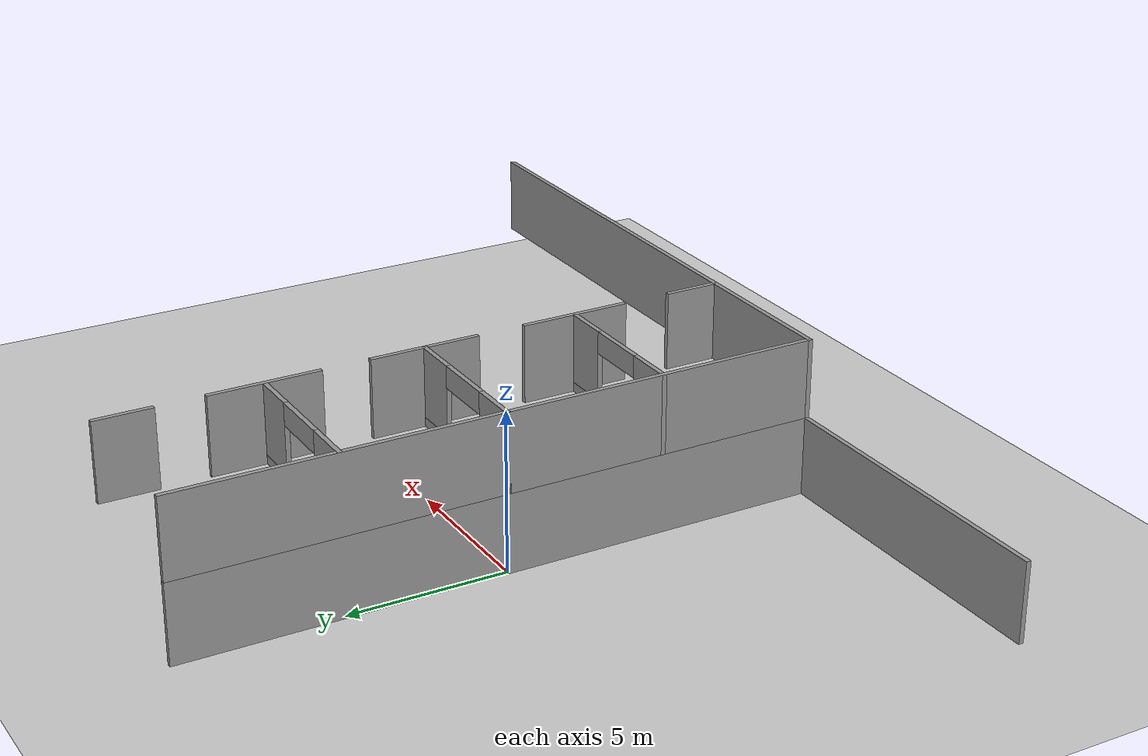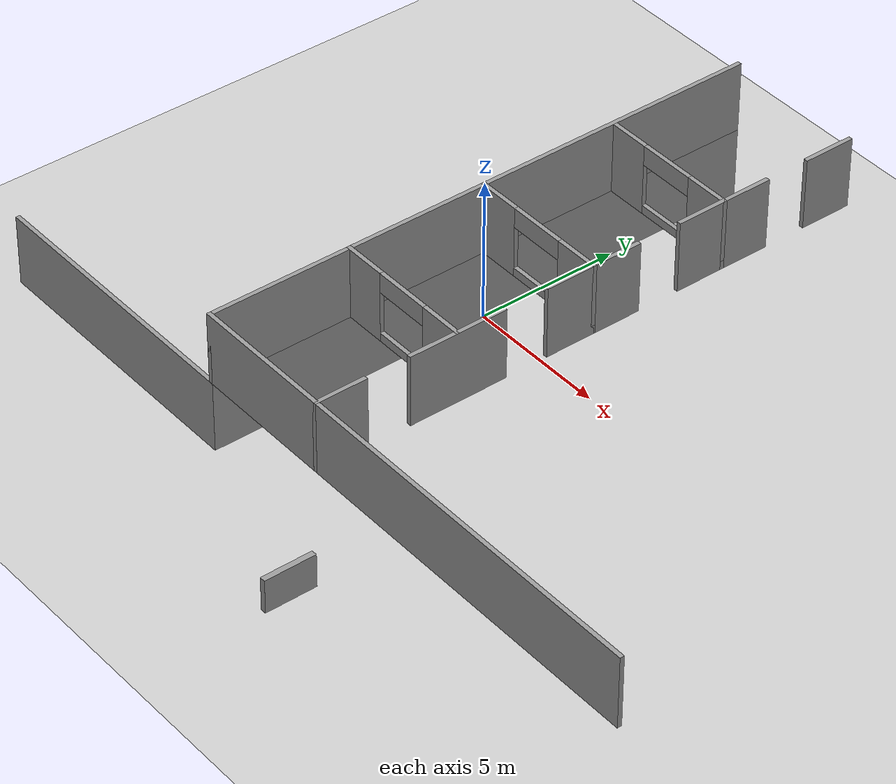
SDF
<sdf version="1.7">
 <world name="default">
  <model name="ground_plane">
   <static>1</static>
   <link name="link">
    <collision name="collision">
     <geometry><plane><normal>0 0 1</normal><size>100 100</size></plane></geometry>
     <surface>
      <contact><collide_bitmask>65535</collide_bitmask></contact>
      <friction><ode><mu>100</mu><mu2>50</mu2></ode></friction>
     </surface>
    </collision>
    <visual name="visual">
     <cast_shadows>0</cast_shadows>
     <geometry><plane><normal>0 0 1</normal><size>100 100</size></plane></geometry>
     <material>
      <script><uri>file://media/materials/scripts/gazebo.material</uri><name>Gazebo/Grey</name></script>
     </material>
    </visual>
   </link>
  </model>
  <model name="smart_house_3_0">
   <link name="Wall_14">
    <pose>2.48447 1.48447 0 0 -0 1.5708</pose>
    <inertial>
     <inertia><ixx>1</ixx><ixy>0</ixy><ixz>0</ixz><iyy>1</iyy><iyz>0</iyz><izz>1</izz></inertia>
     <mass>1</mass>
    </inertial>
    <visual name="Wall_14_Visual">
     <pose>0 0 1.25 0 -0 0</pose>
     <geometry><box><size>20.15 0.15 2.5</size></box></geometry>
     <material>
      <script><uri>file://media/materials/scripts/gazebo.material</uri><name>Gazebo/Grey</name></script>
      <ambient>1 1 1 1</ambient>
      <shader type="pixel"/>
     </material>
     <meta><layer>0</layer></meta>
    </visual>
    <collision name="Wall_14_Collision">
     <pose>0 0 1.25 0 -0 0</pose>
     <geometry><box><size>20.15 0.15 2.5</size></box></geometry>
     <surface>
      <friction>
       <ode><mu>1</mu><mu2>1</mu2><fdir1>0 0 0</fdir1><slip1>0</slip1><slip2>0</slip2></ode>
       <torsional>
        <coefficient>1</coefficient>
        <patch_radius>0</patch_radius>
        <surface_radius>0</surface_radius>
        <use_patch_radius>1</use_patch_radius>
        <ode><slip>0</slip></ode>
       </torsional>
      </friction>
      <bounce><restitution_coefficient>0</restitution_coefficient><threshold>1e+06</threshold></bounce>
      <contact>
       <collide_without_contact>0</collide_without_contact>
       <collide_without_contact_bitmask>1</collide_without_contact_bitmask>
       <collide_bitmask>1</collide_bitmask>
       <ode>
        <soft_cfm>0</soft_cfm>
        <soft_erp>0.2</soft_erp>
        <kp>1e+13</kp>
        <kd>1</kd>
        <max_vel>0.01</max_vel>
        <min_depth>0</min_depth>
       </ode>
       <bullet>
        <split_impulse>1</split_impulse>
        <split_impulse_penetration_threshold>-0.01</split_impulse_penetration_threshold>
        <soft_cfm>0</soft_cfm>
        <soft_erp>0.2</soft_erp>
        <kp>1e+13</kp>
        <kd>1</kd>
       </bullet>
      </contact>
     </surface>
    </collision>
   </link>
   <link name="Wall_234">
    <pose>2.48447 1.48447 2.5 0 -0 1.5708</pose>
    <inertial>
     <inertia><ixx>1</ixx><ixy>0</ixy><ixz>0</ixz><iyy>1</iyy><iyz>0</iyz><izz>1</izz></inertia>
     <mass>1</mass>
    </inertial>
    <visual name="Wall_234_Visual">
     <pose>0 0 1.25 0 -0 0</pose>
     <geometry><box><size>20.15 0.15 2.5</size></box></geometry>
     <material>
      <script><uri>file://media/materials/scripts/gazebo.material</uri><name>Gazebo/Grey</name></script>
      <ambient>1 1 1 1</ambient>
      <shader type="pixel"/>
     </material>
     <meta><layer>2</layer></meta>
    </visual>
    <collision name="Wall_234_Collision">
     <pose>0 0 1.25 0 -0 0</pose>
     <geometry><box><size>20.15 0.15 2.5</size></box></geometry>
     <surface>
      <friction>
       <ode><mu>1</mu><mu2>1</mu2><fdir1>0 0 0</fdir1><slip1>0</slip1><slip2>0</slip2></ode>
       <torsional>
        <coefficient>1</coefficient>
        <patch_radius>0</patch_radius>
        <surface_radius>0</surface_radius>
        <use_patch_radius>1</use_patch_radius>
        <ode><slip>0</slip></ode>
       </torsional>
      </friction>
      <bounce><restitution_coefficient>0</restitution_coefficient><threshold>1e+06</threshold></bounce>
      <contact>
       <collide_without_contact>0</collide_without_contact>
       <collide_without_contact_bitmask>1</collide_without_contact_bitmask>
       <collide_bitmask>1</collide_bitmask>
       <ode>
        <soft_cfm>0</soft_cfm>
        <soft_erp>0.2</soft_erp>
        <kp>1e+13</kp>
        <kd>1</kd>
        <max_vel>0.01</max_vel>
        <min_depth>0</min_depth>
       </ode>
       <bullet>
        <split_impulse>1</split_impulse>
        <split_impulse_penetration_threshold>-0.01</split_impulse_penetration_threshold>
        <soft_cfm>0</soft_cfm>
        <soft_erp>0.2</soft_erp>
        <kp>1e+13</kp>
        <kd>1</kd>
       </bullet>
      </contact>
     </surface>
    </collision>
   </link>
   <link name="Wall_258">
    <pose>11.4845 -8.51553 2.5 0 -0 0</pose>
    <inertial>
     <inertia><ixx>1</ixx><ixy>0</ixy><ixz>0</ixz><iyy>1</iyy><iyz>0</iyz><izz>1</izz></inertia>
     <mass>1</mass>
    </inertial>
    <visual name="Wall_258_Visual">
     <pose>0 0 1.25 0 -0 0</pose>
     <geometry><box><size>18.15 0.15 2.5</size></box></geometry>
     <material>
      <script><uri>file://media/materials/scripts/gazebo.material</uri><name>Gazebo/Grey</name></script>
      <ambient>1 1 1 1</ambient>
      <shader type="pixel"/>
     </material>
     <meta><layer>2</layer></meta>
    </visual>
    <collision name="Wall_258_Collision">
     <pose>0 0 1.25 0 -0 0</pose>
     <geometry><box><size>18.15 0.15 2.5</size></box></geometry>
     <surface>
      <friction>
       <ode><mu>1</mu><mu2>1</mu2><fdir1>0 0 0</fdir1><slip1>0</slip1><slip2>0</slip2></ode>
       <torsional>
        <coefficient>1</coefficient>
        <patch_radius>0</patch_radius>
        <surface_radius>0</surface_radius>
        <use_patch_radius>1</use_patch_radius>
        <ode><slip>0</slip></ode>
       </torsional>
      </friction>
      <bounce><restitution_coefficient>0</restitution_coefficient><threshold>1e+06</threshold></bounce>
      <contact>
       <collide_without_contact>0</collide_without_contact>
       <collide_without_contact_bitmask>1</collide_without_contact_bitmask>
       <collide_bitmask>1</collide_bitmask>
       <ode>
        <soft_cfm>0</soft_cfm>
        <soft_erp>0.2</soft_erp>
        <kp>1e+13</kp>
        <kd>1</kd>
        <max_vel>0.01</max_vel>
        <min_depth>0</min_depth>
       </ode>
       <bullet>
        <split_impulse>1</split_impulse>
        <split_impulse_penetration_threshold>-0.01</split_impulse_penetration_threshold>
        <soft_cfm>0</soft_cfm>
        <soft_erp>0.2</soft_erp>
        <kp>1e+13</kp>
        <kd>1</kd>
       </bullet>
      </contact>
     </surface>
    </collision>
   </link>
   <link name="Wall_288">
    <pose>4.98447 6.48447 2.5 0 -0 0</pose>
    <inertial>
     <inertia><ixx>1</ixx><ixy>0</ixy><ixz>0</ixz><iyy>1</iyy><iyz>0</iyz><izz>1</izz></inertia>
     <mass>1</mass>
    </inertial>
    <visual name="Wall_288_Visual_3">
     <pose>0 0 2.15 0 -0 0</pose>
     <geometry><box><size>2 0.15 0.7</size></box></geometry>
     <material>
      <script><uri>file://media/materials/scripts/gazebo.material</uri><name>Gazebo/Grey</name></script>
      <ambient>1 1 1 1</ambient>
      <shader type="pixel"/>
     </material>
     <meta><layer>2</layer></meta>
    </visual>
    <visual name="Wall_288_Visual_0">
     <pose>-1.7875 0 1.25 0 -0 0</pose>
     <geometry><box><size>1.575 0.15 2.5</size></box></geometry>
     <material>
      <script><uri>file://media/materials/scripts/gazebo.material</uri><name>Gazebo/Grey</name></script>
      <ambient>1 1 1 1</ambient>
      <shader type="pixel"/>
     </material>
     <meta><layer>2</layer></meta>
    </visual>
    <visual name="Wall_288_Visual_1">
     <pose>0.7875 0 0.15 0 -0 0</pose>
     <geometry><box><size>3.575 0.15 0.3</size></box></geometry>
     <material>
      <script><uri>file://media/materials/scripts/gazebo.material</uri><name>Gazebo/Grey</name></script>
      <ambient>1 1 1 1</ambient>
      <shader type="pixel"/>
     </material>
     <meta><layer>2</layer></meta>
    </visual>
    <visual name="Wall_288_Visual_2">
     <pose>1.7875 0 1.4 0 -0 0</pose>
     <geometry><box><size>1.575 0.15 2.2</size></box></geometry>
     <material>
      <script><uri>file://media/materials/scripts/gazebo.material</uri><name>Gazebo/Grey</name></script>
      <ambient>1 1 1 1</ambient>
      <shader type="pixel"/>
     </material>
     <meta><layer>2</layer></meta>
    </visual>
    <collision name="Wall_288_Collision_1">
     <pose>0.7875 0 0.15 0 -0 0</pose>
     <geometry><box><size>3.575 0.15 0.3</size></box></geometry>
     <surface>
      <friction>
       <ode><mu>1</mu><mu2>1</mu2><fdir1>0 0 0</fdir1><slip1>0</slip1><slip2>0</slip2></ode>
       <torsional>
        <coefficient>1</coefficient>
        <patch_radius>0</patch_radius>
        <surface_radius>0</surface_radius>
        <use_patch_radius>1</use_patch_radius>
        <ode><slip>0</slip></ode>
       </torsional>
      </friction>
      <bounce><restitution_coefficient>0</restitution_coefficient><threshold>1e+06</threshold></bounce>
      <contact>
       <collide_without_contact>0</collide_without_contact>
       <collide_without_contact_bitmask>1</collide_without_contact_bitmask>
       <collide_bitmask>1</collide_bitmask>
       <ode>
        <soft_cfm>0</soft_cfm>
        <soft_erp>0.2</soft_erp>
        <kp>1e+13</kp>
        <kd>1</kd>
        <max_vel>0.01</max_vel>
        <min_depth>0</min_depth>
       </ode>
       <bullet>
        <split_impulse>1</split_impulse>
        <split_impulse_penetration_threshold>-0.01</split_impulse_penetration_threshold>
        <soft_cfm>0</soft_cfm>
        <soft_erp>0.2</soft_erp>
        <kp>1e+13</kp>
        <kd>1</kd>
       </bullet>
      </contact>
     </surface>
    </collision>
    <collision name="Wall_288_Collision_3">
     <pose>0 0 2.15 0 -0 0</pose>
     <geometry><box><size>2 0.15 0.7</size></box></geometry>
     <surface>
      <friction>
       <ode><mu>1</mu><mu2>1</mu2><fdir1>0 0 0</fdir1><slip1>0</slip1><slip2>0</slip2></ode>
       <torsional>
        <coefficient>1</coefficient>
        <patch_radius>0</patch_radius>
        <surface_radius>0</surface_radius>
        <use_patch_radius>1</use_patch_radius>
        <ode><slip>0</slip></ode>
       </torsional>
      </friction>
      <bounce><restitution_coefficient>0</restitution_coefficient><threshold>1e+06</threshold></bounce>
      <contact>
       <collide_without_contact>0</collide_without_contact>
       <collide_without_contact_bitmask>1</collide_without_contact_bitmask>
       <collide_bitmask>1</collide_bitmask>
       <ode>
        <soft_cfm>0</soft_cfm>
        <soft_erp>0.2</soft_erp>
        <kp>1e+13</kp>
        <kd>1</kd>
        <max_vel>0.01</max_vel>
        <min_depth>0</min_depth>
       </ode>
       <bullet>
        <split_impulse>1</split_impulse>
        <split_impulse_penetration_threshold>-0.01</split_impulse_penetration_threshold>
        <soft_cfm>0</soft_cfm>
        <soft_erp>0.2</soft_erp>
        <kp>1e+13</kp>
        <kd>1</kd>
       </bullet>
      </contact>
     </surface>
    </collision>
    <collision name="Wall_288_Collision_0">
     <pose>-1.7875 0 1.25 0 -0 0</pose>
     <geometry><box><size>1.575 0.15 2.5</size></box></geometry>
     <surface>
      <friction>
       <ode><mu>1</mu><mu2>1</mu2><fdir1>0 0 0</fdir1><slip1>0</slip1><slip2>0</slip2></ode>
       <torsional>
        <coefficient>1</coefficient>
        <patch_radius>0</patch_radius>
        <surface_radius>0</surface_radius>
        <use_patch_radius>1</use_patch_radius>
        <ode><slip>0</slip></ode>
       </torsional>
      </friction>
      <bounce><restitution_coefficient>0</restitution_coefficient><threshold>1e+06</threshold></bounce>
      <contact>
       <collide_without_contact>0</collide_without_contact>
       <collide_without_contact_bitmask>1</collide_without_contact_bitmask>
       <collide_bitmask>1</collide_bitmask>
       <ode>
        <soft_cfm>0</soft_cfm>
        <soft_erp>0.2</soft_erp>
        <kp>1e+13</kp>
        <kd>1</kd>
        <max_vel>0.01</max_vel>
        <min_depth>0</min_depth>
       </ode>
       <bullet>
        <split_impulse>1</split_impulse>
        <split_impulse_penetration_threshold>-0.01</split_impulse_penetration_threshold>
        <soft_cfm>0</soft_cfm>
        <soft_erp>0.2</soft_erp>
        <kp>1e+13</kp>
        <kd>1</kd>
       </bullet>
      </contact>
     </surface>
    </collision>
    <collision name="Wall_288_Collision_2">
     <pose>1.7875 0 1.4 0 -0 0</pose>
     <geometry><box><size>1.575 0.15 2.2</size></box></geometry>
     <surface>
      <friction>
       <ode><mu>1</mu><mu2>1</mu2><fdir1>0 0 0</fdir1><slip1>0</slip1><slip2>0</slip2></ode>
       <torsional>
        <coefficient>1</coefficient>
        <patch_radius>0</patch_radius>
        <surface_radius>0</surface_radius>
        <use_patch_radius>1</use_patch_radius>
        <ode><slip>0</slip></ode>
       </torsional>
      </friction>
      <bounce><restitution_coefficient>0</restitution_coefficient><threshold>1e+06</threshold></bounce>
      <contact>
       <collide_without_contact>0</collide_without_contact>
       <collide_without_contact_bitmask>1</collide_without_contact_bitmask>
       <collide_bitmask>1</collide_bitmask>
       <ode>
        <soft_cfm>0</soft_cfm>
        <soft_erp>0.2</soft_erp>
        <kp>1e+13</kp>
        <kd>1</kd>
        <max_vel>0.01</max_vel>
        <min_depth>0</min_depth>
       </ode>
       <bullet>
        <split_impulse>1</split_impulse>
        <split_impulse_penetration_threshold>-0.01</split_impulse_penetration_threshold>
        <soft_cfm>0</soft_cfm>
        <soft_erp>0.2</soft_erp>
        <kp>1e+13</kp>
        <kd>1</kd>
       </bullet>
      </contact>
     </surface>
    </collision>
   </link>
   <link name="Wall_290">
    <pose>4.98447 1.48447 2.5 0 -0 0</pose>
    <inertial>
     <inertia><ixx>1</ixx><ixy>0</ixy><ixz>0</ixz><iyy>1</iyy><iyz>0</iyz><izz>1</izz></inertia>
     <mass>1</mass>
    </inertial>
    <visual name="Wall_290_Visual_1">
     <pose>0.7875 0 0.15 0 -0 0</pose>
     <geometry><box><size>3.575 0.15 0.3</size></box></geometry>
     <material>
      <script><uri>file://media/materials/scripts/gazebo.material</uri><name>Gazebo/Grey</name></script>
      <ambient>1 1 1 1</ambient>
      <shader type="pixel"/>
     </material>
     <meta><layer>2</layer></meta>
    </visual>
    <visual name="Wall_290_Visual_0">
     <pose>-1.7875 0 1.25 0 -0 0</pose>
     <geometry><box><size>1.575 0.15 2.5</size></box></geometry>
     <material>
      <script><uri>file://media/materials/scripts/gazebo.material</uri><name>Gazebo/Grey</name></script>
      <ambient>1 1 1 1</ambient>
      <shader type="pixel"/>
     </material>
     <meta><layer>2</layer></meta>
    </visual>
    <visual name="Wall_290_Visual_2">
     <pose>1.7875 0 1.4 0 -0 0</pose>
     <geometry><box><size>1.575 0.15 2.2</size></box></geometry>
     <material>
      <script><uri>file://media/materials/scripts/gazebo.material</uri><name>Gazebo/Grey</name></script>
      <ambient>1 1 1 1</ambient>
      <shader type="pixel"/>
     </material>
     <meta><layer>2</layer></meta>
    </visual>
    <visual name="Wall_290_Visual_3">
     <pose>0 0 2.15 0 -0 0</pose>
     <geometry><box><size>2 0.15 0.7</size></box></geometry>
     <material>
      <script><uri>file://media/materials/scripts/gazebo.material</uri><name>Gazebo/Grey</name></script>
      <ambient>1 1 1 1</ambient>
      <shader type="pixel"/>
     </material>
     <meta><layer>2</layer></meta>
    </visual>
    <collision name="Wall_290_Collision_3">
     <pose>0 0 2.15 0 -0 0</pose>
     <geometry><box><size>2 0.15 0.7</size></box></geometry>
     <surface>
      <friction>
       <ode><mu>1</mu><mu2>1</mu2><fdir1>0 0 0</fdir1><slip1>0</slip1><slip2>0</slip2></ode>
       <torsional>
        <coefficient>1</coefficient>
        <patch_radius>0</patch_radius>
        <surface_radius>0</surface_radius>
        <use_patch_radius>1</use_patch_radius>
        <ode><slip>0</slip></ode>
       </torsional>
      </friction>
      <bounce><restitution_coefficient>0</restitution_coefficient><threshold>1e+06</threshold></bounce>
      <contact>
       <collide_without_contact>0</collide_without_contact>
       <collide_without_contact_bitmask>1</collide_without_contact_bitmask>
       <collide_bitmask>1</collide_bitmask>
       <ode>
        <soft_cfm>0</soft_cfm>
        <soft_erp>0.2</soft_erp>
        <kp>1e+13</kp>
        <kd>1</kd>
        <max_vel>0.01</max_vel>
        <min_depth>0</min_depth>
       </ode>
       <bullet>
        <split_impulse>1</split_impulse>
        <split_impulse_penetration_threshold>-0.01</split_impulse_penetration_threshold>
        <soft_cfm>0</soft_cfm>
        <soft_erp>0.2</soft_erp>
        <kp>1e+13</kp>
        <kd>1</kd>
       </bullet>
      </contact>
     </surface>
    </collision>
    <collision name="Wall_290_Collision_1">
     <pose>0.7875 0 0.15 0 -0 0</pose>
     <geometry><box><size>3.575 0.15 0.3</size></box></geometry>
     <surface>
      <friction>
       <ode><mu>1</mu><mu2>1</mu2><fdir1>0 0 0</fdir1><slip1>0</slip1><slip2>0</slip2></ode>
       <torsional>
        <coefficient>1</coefficient>
        <patch_radius>0</patch_radius>
        <surface_radius>0</surface_radius>
        <use_patch_radius>1</use_patch_radius>
        <ode><slip>0</slip></ode>
       </torsional>
      </friction>
      <bounce><restitution_coefficient>0</restitution_coefficient><threshold>1e+06</threshold></bounce>
      <contact>
       <collide_without_contact>0</collide_without_contact>
       <collide_without_contact_bitmask>1</collide_without_contact_bitmask>
       <collide_bitmask>1</collide_bitmask>
       <ode>
        <soft_cfm>0</soft_cfm>
        <soft_erp>0.2</soft_erp>
        <kp>1e+13</kp>
        <kd>1</kd>
        <max_vel>0.01</max_vel>
        <min_depth>0</min_depth>
       </ode>
       <bullet>
        <split_impulse>1</split_impulse>
        <split_impulse_penetration_threshold>-0.01</split_impulse_penetration_threshold>
        <soft_cfm>0</soft_cfm>
        <soft_erp>0.2</soft_erp>
        <kp>1e+13</kp>
        <kd>1</kd>
       </bullet>
      </contact>
     </surface>
    </collision>
    <collision name="Wall_290_Collision_2">
     <pose>1.7875 0 1.4 0 -0 0</pose>
     <geometry><box><size>1.575 0.15 2.2</size></box></geometry>
     <surface>
      <friction>
       <ode><mu>1</mu><mu2>1</mu2><fdir1>0 0 0</fdir1><slip1>0</slip1><slip2>0</slip2></ode>
       <torsional>
        <coefficient>1</coefficient>
        <patch_radius>0</patch_radius>
        <surface_radius>0</surface_radius>
        <use_patch_radius>1</use_patch_radius>
        <ode><slip>0</slip></ode>
       </torsional>
      </friction>
      <bounce><restitution_coefficient>0</restitution_coefficient><threshold>1e+06</threshold></bounce>
      <contact>
       <collide_without_contact>0</collide_without_contact>
       <collide_without_contact_bitmask>1</collide_without_contact_bitmask>
       <collide_bitmask>1</collide_bitmask>
       <ode>
        <soft_cfm>0</soft_cfm>
        <soft_erp>0.2</soft_erp>
        <kp>1e+13</kp>
        <kd>1</kd>
        <max_vel>0.01</max_vel>
        <min_depth>0</min_depth>
       </ode>
       <bullet>
        <split_impulse>1</split_impulse>
        <split_impulse_penetration_threshold>-0.01</split_impulse_penetration_threshold>
        <soft_cfm>0</soft_cfm>
        <soft_erp>0.2</soft_erp>
        <kp>1e+13</kp>
        <kd>1</kd>
       </bullet>
      </contact>
     </surface>
    </collision>
    <collision name="Wall_290_Collision_0">
     <pose>-1.7875 0 1.25 0 -0 0</pose>
     <geometry><box><size>1.575 0.15 2.5</size></box></geometry>
     <surface>
      <friction>
       <ode><mu>1</mu><mu2>1</mu2><fdir1>0 0 0</fdir1><slip1>0</slip1><slip2>0</slip2></ode>
       <torsional>
        <coefficient>1</coefficient>
        <patch_radius>0</patch_radius>
        <surface_radius>0</surface_radius>
        <use_patch_radius>1</use_patch_radius>
        <ode><slip>0</slip></ode>
       </torsional>
      </friction>
      <bounce><restitution_coefficient>0</restitution_coefficient><threshold>1e+06</threshold></bounce>
      <contact>
       <collide_without_contact>0</collide_without_contact>
       <collide_without_contact_bitmask>1</collide_without_contact_bitmask>
       <collide_bitmask>1</collide_bitmask>
       <ode>
        <soft_cfm>0</soft_cfm>
        <soft_erp>0.2</soft_erp>
        <kp>1e+13</kp>
        <kd>1</kd>
        <max_vel>0.01</max_vel>
        <min_depth>0</min_depth>
       </ode>
       <bullet>
        <split_impulse>1</split_impulse>
        <split_impulse_penetration_threshold>-0.01</split_impulse_penetration_threshold>
        <soft_cfm>0</soft_cfm>
        <soft_erp>0.2</soft_erp>
        <kp>1e+13</kp>
        <kd>1</kd>
       </bullet>
      </contact>
     </surface>
    </collision>
   </link>
   <link name="Wall_292">
    <pose>4.98447 -3.51553 2.5 0 -0 0</pose>
    <inertial>
     <inertia><ixx>1</ixx><ixy>0</ixy><ixz>0</ixz><iyy>1</iyy><iyz>0</iyz><izz>1</izz></inertia>
     <mass>1</mass>
    </inertial>
    <visual name="Wall_292_Visual_0">
     <pose>-1.7875 0 1.25 0 -0 0</pose>
     <geometry><box><size>1.575 0.15 2.5</size></box></geometry>
     <material>
      <script><uri>file://media/materials/scripts/gazebo.material</uri><name>Gazebo/Grey</name></script>
      <ambient>1 1 1 1</ambient>
      <shader type="pixel"/>
     </material>
     <meta><layer>2</layer></meta>
    </visual>
    <visual name="Wall_292_Visual_2">
     <pose>1.7875 0 1.4 0 -0 0</pose>
     <geometry><box><size>1.575 0.15 2.2</size></box></geometry>
     <material>
      <script><uri>file://media/materials/scripts/gazebo.material</uri><name>Gazebo/Grey</name></script>
      <ambient>1 1 1 1</ambient>
      <shader type="pixel"/>
     </material>
     <meta><layer>2</layer></meta>
    </visual>
    <visual name="Wall_292_Visual_3">
     <pose>0 0 2.15 0 -0 0</pose>
     <geometry><box><size>2 0.15 0.7</size></box></geometry>
     <material>
      <script><uri>file://media/materials/scripts/gazebo.material</uri><name>Gazebo/Grey</name></script>
      <ambient>1 1 1 1</ambient>
      <shader type="pixel"/>
     </material>
     <meta><layer>2</layer></meta>
    </visual>
    <visual name="Wall_292_Visual_1">
     <pose>0.7875 0 0.15 0 -0 0</pose>
     <geometry><box><size>3.575 0.15 0.3</size></box></geometry>
     <material>
      <script><uri>file://media/materials/scripts/gazebo.material</uri><name>Gazebo/Grey</name></script>
      <ambient>1 1 1 1</ambient>
      <shader type="pixel"/>
     </material>
     <meta><layer>2</layer></meta>
    </visual>
    <collision name="Wall_292_Collision_0">
     <pose>-1.7875 0 1.25 0 -0 0</pose>
     <geometry><box><size>1.575 0.15 2.5</size></box></geometry>
     <surface>
      <friction>
       <ode><mu>1</mu><mu2>1</mu2><fdir1>0 0 0</fdir1><slip1>0</slip1><slip2>0</slip2></ode>
       <torsional>
        <coefficient>1</coefficient>
        <patch_radius>0</patch_radius>
        <surface_radius>0</surface_radius>
        <use_patch_radius>1</use_patch_radius>
        <ode><slip>0</slip></ode>
       </torsional>
      </friction>
      <bounce><restitution_coefficient>0</restitution_coefficient><threshold>1e+06</threshold></bounce>
      <contact>
       <collide_without_contact>0</collide_without_contact>
       <collide_without_contact_bitmask>1</collide_without_contact_bitmask>
       <collide_bitmask>1</collide_bitmask>
       <ode>
        <soft_cfm>0</soft_cfm>
        <soft_erp>0.2</soft_erp>
        <kp>1e+13</kp>
        <kd>1</kd>
        <max_vel>0.01</max_vel>
        <min_depth>0</min_depth>
       </ode>
       <bullet>
        <split_impulse>1</split_impulse>
        <split_impulse_penetration_threshold>-0.01</split_impulse_penetration_threshold>
        <soft_cfm>0</soft_cfm>
        <soft_erp>0.2</soft_erp>
        <kp>1e+13</kp>
        <kd>1</kd>
       </bullet>
      </contact>
     </surface>
    </collision>
    <collision name="Wall_292_Collision_3">
     <pose>0 0 2.15 0 -0 0</pose>
     <geometry><box><size>2 0.15 0.7</size></box></geometry>
     <surface>
      <friction>
       <ode><mu>1</mu><mu2>1</mu2><fdir1>0 0 0</fdir1><slip1>0</slip1><slip2>0</slip2></ode>
       <torsional>
        <coefficient>1</coefficient>
        <patch_radius>0</patch_radius>
        <surface_radius>0</surface_radius>
        <use_patch_radius>1</use_patch_radius>
        <ode><slip>0</slip></ode>
       </torsional>
      </friction>
      <bounce><restitution_coefficient>0</restitution_coefficient><threshold>1e+06</threshold></bounce>
      <contact>
       <collide_without_contact>0</collide_without_contact>
       <collide_without_contact_bitmask>1</collide_without_contact_bitmask>
       <collide_bitmask>1</collide_bitmask>
       <ode>
        <soft_cfm>0</soft_cfm>
        <soft_erp>0.2</soft_erp>
        <kp>1e+13</kp>
        <kd>1</kd>
        <max_vel>0.01</max_vel>
        <min_depth>0</min_depth>
       </ode>
       <bullet>
        <split_impulse>1</split_impulse>
        <split_impulse_penetration_threshold>-0.01</split_impulse_penetration_threshold>
        <soft_cfm>0</soft_cfm>
        <soft_erp>0.2</soft_erp>
        <kp>1e+13</kp>
        <kd>1</kd>
       </bullet>
      </contact>
     </surface>
    </collision>
    <collision name="Wall_292_Collision_2">
     <pose>1.7875 0 1.4 0 -0 0</pose>
     <geometry><box><size>1.575 0.15 2.2</size></box></geometry>
     <surface>
      <friction>
       <ode><mu>1</mu><mu2>1</mu2><fdir1>0 0 0</fdir1><slip1>0</slip1><slip2>0</slip2></ode>
       <torsional>
        <coefficient>1</coefficient>
        <patch_radius>0</patch_radius>
        <surface_radius>0</surface_radius>
        <use_patch_radius>1</use_patch_radius>
        <ode><slip>0</slip></ode>
       </torsional>
      </friction>
      <bounce><restitution_coefficient>0</restitution_coefficient><threshold>1e+06</threshold></bounce>
      <contact>
       <collide_without_contact>0</collide_without_contact>
       <collide_without_contact_bitmask>1</collide_without_contact_bitmask>
       <collide_bitmask>1</collide_bitmask>
       <ode>
        <soft_cfm>0</soft_cfm>
        <soft_erp>0.2</soft_erp>
        <kp>1e+13</kp>
        <kd>1</kd>
        <max_vel>0.01</max_vel>
        <min_depth>0</min_depth>
       </ode>
       <bullet>
        <split_impulse>1</split_impulse>
        <split_impulse_penetration_threshold>-0.01</split_impulse_penetration_threshold>
        <soft_cfm>0</soft_cfm>
        <soft_erp>0.2</soft_erp>
        <kp>1e+13</kp>
        <kd>1</kd>
       </bullet>
      </contact>
     </surface>
    </collision>
    <collision name="Wall_292_Collision_1">
     <pose>0.7875 0 0.15 0 -0 0</pose>
     <geometry><box><size>3.575 0.15 0.3</size></box></geometry>
     <surface>
      <friction>
       <ode><mu>1</mu><mu2>1</mu2><fdir1>0 0 0</fdir1><slip1>0</slip1><slip2>0</slip2></ode>
       <torsional>
        <coefficient>1</coefficient>
        <patch_radius>0</patch_radius>
        <surface_radius>0</surface_radius>
        <use_patch_radius>1</use_patch_radius>
        <ode><slip>0</slip></ode>
       </torsional>
      </friction>
      <bounce><restitution_coefficient>0</restitution_coefficient><threshold>1e+06</threshold></bounce>
      <contact>
       <collide_without_contact>0</collide_without_contact>
       <collide_without_contact_bitmask>1</collide_without_contact_bitmask>
       <collide_bitmask>1</collide_bitmask>
       <ode>
        <soft_cfm>0</soft_cfm>
        <soft_erp>0.2</soft_erp>
        <kp>1e+13</kp>
        <kd>1</kd>
        <max_vel>0.01</max_vel>
        <min_depth>0</min_depth>
       </ode>
       <bullet>
        <split_impulse>1</split_impulse>
        <split_impulse_penetration_threshold>-0.01</split_impulse_penetration_threshold>
        <soft_cfm>0</soft_cfm>
        <soft_erp>0.2</soft_erp>
        <kp>1e+13</kp>
        <kd>1</kd>
       </bullet>
      </contact>
     </surface>
    </collision>
   </link>
   <link name="Wall_294">
    <pose>7.48447 1.48447 2.5 0 -0 1.5708</pose>
    <inertial>
     <inertia><ixx>1</ixx><ixy>0</ixy><ixz>0</ixz><iyy>1</iyy><iyz>0</iyz><izz>1</izz></inertia>
     <mass>1</mass>
    </inertial>
    <visual name="Wall_294_Visual_2">
     <pose>0 0 1.25 0 -0 0</pose>
     <geometry><box><size>3.5 0.15 2.5</size></box></geometry>
     <material>
      <script><uri>file://media/materials/scripts/gazebo.material</uri><name>Gazebo/Grey</name></script>
      <ambient>1 1 1 1</ambient>
      <shader type="pixel"/>
     </material>
     <meta><layer>2</layer></meta>
    </visual>
    <visual name="Wall_294_Visual_4">
     <pose>9.1625 0 1.25 0 -0 0</pose>
     <geometry><box><size>1.825 0.15 2.5</size></box></geometry>
     <material>
      <script><uri>file://media/materials/scripts/gazebo.material</uri><name>Gazebo/Grey</name></script>
      <ambient>1 1 1 1</ambient>
      <shader type="pixel"/>
     </material>
     <meta><layer>2</layer></meta>
    </visual>
    <visual name="Wall_294_Visual_1">
     <pose>-5 0 1.25 0 -0 0</pose>
     <geometry><box><size>3.5 0.15 2.5</size></box></geometry>
     <material>
      <script><uri>file://media/materials/scripts/gazebo.material</uri><name>Gazebo/Grey</name></script>
      <ambient>1 1 1 1</ambient>
      <shader type="pixel"/>
     </material>
     <meta><layer>2</layer></meta>
    </visual>
    <visual name="Wall_294_Visual_0">
     <pose>-9.1625 0 1.25 0 -0 0</pose>
     <geometry><box><size>1.825 0.15 2.5</size></box></geometry>
     <material>
      <script><uri>file://media/materials/scripts/gazebo.material</uri><name>Gazebo/Grey</name></script>
      <ambient>1 1 1 1</ambient>
      <shader type="pixel"/>
     </material>
     <meta><layer>2</layer></meta>
    </visual>
    <visual name="Wall_294_Visual_3">
     <pose>5 0 1.25 0 -0 0</pose>
     <geometry><box><size>3.5 0.15 2.5</size></box></geometry>
     <material>
      <script><uri>file://media/materials/scripts/gazebo.material</uri><name>Gazebo/Grey</name></script>
      <ambient>1 1 1 1</ambient>
      <shader type="pixel"/>
     </material>
     <meta><layer>2</layer></meta>
    </visual>
    <collision name="Wall_294_Collision_2">
     <pose>0 0 1.25 0 -0 0</pose>
     <geometry><box><size>3.5 0.15 2.5</size></box></geometry>
     <surface>
      <friction>
       <ode><mu>1</mu><mu2>1</mu2><fdir1>0 0 0</fdir1><slip1>0</slip1><slip2>0</slip2></ode>
       <torsional>
        <coefficient>1</coefficient>
        <patch_radius>0</patch_radius>
        <surface_radius>0</surface_radius>
        <use_patch_radius>1</use_patch_radius>
        <ode><slip>0</slip></ode>
       </torsional>
      </friction>
      <bounce><restitution_coefficient>0</restitution_coefficient><threshold>1e+06</threshold></bounce>
      <contact>
       <collide_without_contact>0</collide_without_contact>
       <collide_without_contact_bitmask>1</collide_without_contact_bitmask>
       <collide_bitmask>1</collide_bitmask>
       <ode>
        <soft_cfm>0</soft_cfm>
        <soft_erp>0.2</soft_erp>
        <kp>1e+13</kp>
        <kd>1</kd>
        <max_vel>0.01</max_vel>
        <min_depth>0</min_depth>
       </ode>
       <bullet>
        <split_impulse>1</split_impulse>
        <split_impulse_penetration_threshold>-0.01</split_impulse_penetration_threshold>
        <soft_cfm>0</soft_cfm>
        <soft_erp>0.2</soft_erp>
        <kp>1e+13</kp>
        <kd>1</kd>
       </bullet>
      </contact>
     </surface>
    </collision>
    <collision name="Wall_294_Collision_1">
     <pose>-5 0 1.25 0 -0 0</pose>
     <geometry><box><size>3.5 0.15 2.5</size></box></geometry>
     <surface>
      <friction>
       <ode><mu>1</mu><mu2>1</mu2><fdir1>0 0 0</fdir1><slip1>0</slip1><slip2>0</slip2></ode>
       <torsional>
        <coefficient>1</coefficient>
        <patch_radius>0</patch_radius>
        <surface_radius>0</surface_radius>
        <use_patch_radius>1</use_patch_radius>
        <ode><slip>0</slip></ode>
       </torsional>
      </friction>
      <bounce><restitution_coefficient>0</restitution_coefficient><threshold>1e+06</threshold></bounce>
      <contact>
       <collide_without_contact>0</collide_without_contact>
       <collide_without_contact_bitmask>1</collide_without_contact_bitmask>
       <collide_bitmask>1</collide_bitmask>
       <ode>
        <soft_cfm>0</soft_cfm>
        <soft_erp>0.2</soft_erp>
        <kp>1e+13</kp>
        <kd>1</kd>
        <max_vel>0.01</max_vel>
        <min_depth>0</min_depth>
       </ode>
       <bullet>
        <split_impulse>1</split_impulse>
        <split_impulse_penetration_threshold>-0.01</split_impulse_penetration_threshold>
        <soft_cfm>0</soft_cfm>
        <soft_erp>0.2</soft_erp>
        <kp>1e+13</kp>
        <kd>1</kd>
       </bullet>
      </contact>
     </surface>
    </collision>
    <collision name="Wall_294_Collision_0">
     <pose>-9.1625 0 1.25 0 -0 0</pose>
     <geometry><box><size>1.825 0.15 2.5</size></box></geometry>
     <surface>
      <friction>
       <ode><mu>1</mu><mu2>1</mu2><fdir1>0 0 0</fdir1><slip1>0</slip1><slip2>0</slip2></ode>
       <torsional>
        <coefficient>1</coefficient>
        <patch_radius>0</patch_radius>
        <surface_radius>0</surface_radius>
        <use_patch_radius>1</use_patch_radius>
        <ode><slip>0</slip></ode>
       </torsional>
      </friction>
      <bounce><restitution_coefficient>0</restitution_coefficient><threshold>1e+06</threshold></bounce>
      <contact>
       <collide_without_contact>0</collide_without_contact>
       <collide_without_contact_bitmask>1</collide_without_contact_bitmask>
       <collide_bitmask>1</collide_bitmask>
       <ode>
        <soft_cfm>0</soft_cfm>
        <soft_erp>0.2</soft_erp>
        <kp>1e+13</kp>
        <kd>1</kd>
        <max_vel>0.01</max_vel>
        <min_depth>0</min_depth>
       </ode>
       <bullet>
        <split_impulse>1</split_impulse>
        <split_impulse_penetration_threshold>-0.01</split_impulse_penetration_threshold>
        <soft_cfm>0</soft_cfm>
        <soft_erp>0.2</soft_erp>
        <kp>1e+13</kp>
        <kd>1</kd>
       </bullet>
      </contact>
     </surface>
    </collision>
    <collision name="Wall_294_Collision_3">
     <pose>5 0 1.25 0 -0 0</pose>
     <geometry><box><size>3.5 0.15 2.5</size></box></geometry>
     <surface>
      <friction>
       <ode><mu>1</mu><mu2>1</mu2><fdir1>0 0 0</fdir1><slip1>0</slip1><slip2>0</slip2></ode>
       <torsional>
        <coefficient>1</coefficient>
        <patch_radius>0</patch_radius>
        <surface_radius>0</surface_radius>
        <use_patch_radius>1</use_patch_radius>
        <ode><slip>0</slip></ode>
       </torsional>
      </friction>
      <bounce><restitution_coefficient>0</restitution_coefficient><threshold>1e+06</threshold></bounce>
      <contact>
       <collide_without_contact>0</collide_without_contact>
       <collide_without_contact_bitmask>1</collide_without_contact_bitmask>
       <collide_bitmask>1</collide_bitmask>
       <ode>
        <soft_cfm>0</soft_cfm>
        <soft_erp>0.2</soft_erp>
        <kp>1e+13</kp>
        <kd>1</kd>
        <max_vel>0.01</max_vel>
        <min_depth>0</min_depth>
       </ode>
       <bullet>
        <split_impulse>1</split_impulse>
        <split_impulse_penetration_threshold>-0.01</split_impulse_penetration_threshold>
        <soft_cfm>0</soft_cfm>
        <soft_erp>0.2</soft_erp>
        <kp>1e+13</kp>
        <kd>1</kd>
       </bullet>
      </contact>
     </surface>
    </collision>
    <collision name="Wall_294_Collision_4">
     <pose>9.1625 0 1.25 0 -0 0</pose>
     <geometry><box><size>1.825 0.15 2.5</size></box></geometry>
     <surface>
      <friction>
       <ode><mu>1</mu><mu2>1</mu2><fdir1>0 0 0</fdir1><slip1>0</slip1><slip2>0</slip2></ode>
       <torsional>
        <coefficient>1</coefficient>
        <patch_radius>0</patch_radius>
        <surface_radius>0</surface_radius>
        <use_patch_radius>1</use_patch_radius>
        <ode><slip>0</slip></ode>
       </torsional>
      </friction>
      <bounce><restitution_coefficient>0</restitution_coefficient><threshold>1e+06</threshold></bounce>
      <contact>
       <collide_without_contact>0</collide_without_contact>
       <collide_without_contact_bitmask>1</collide_without_contact_bitmask>
       <collide_bitmask>1</collide_bitmask>
       <ode>
        <soft_cfm>0</soft_cfm>
        <soft_erp>0.2</soft_erp>
        <kp>1e+13</kp>
        <kd>1</kd>
        <max_vel>0.01</max_vel>
        <min_depth>0</min_depth>
       </ode>
       <bullet>
        <split_impulse>1</split_impulse>
        <split_impulse_penetration_threshold>-0.01</split_impulse_penetration_threshold>
        <soft_cfm>0</soft_cfm>
        <soft_erp>0.2</soft_erp>
        <kp>1e+13</kp>
        <kd>1</kd>
       </bullet>
      </contact>
     </surface>
    </collision>
   </link>
   <link name="Wall_42">
    <pose>-2.51553 -8.51553 0 0 -0 3.14159</pose>
    <inertial>
     <inertia><ixx>1</ixx><ixy>0</ixy><ixz>0</ixz><iyy>1</iyy><iyz>0</iyz><izz>1</izz></inertia>
     <mass>1</mass>
    </inertial>
    <visual name="Wall_42_Visual">
     <pose>0 0 1.25 0 -0 0</pose>
     <geometry><box><size>10.15 0.15 2.5</size></box></geometry>
     <material>
      <script><uri>file://media/materials/scripts/gazebo.material</uri><name>Gazebo/Grey</name></script>
      <ambient>1 1 1 1</ambient>
      <shader type="pixel"/>
     </material>
     <meta><layer>0</layer></meta>
    </visual>
    <collision name="Wall_42_Collision">
     <pose>0 0 1.25 0 -0 0</pose>
     <geometry><box><size>10.15 0.15 2.5</size></box></geometry>
     <surface>
      <friction>
       <ode><mu>1</mu><mu2>1</mu2><fdir1>0 0 0</fdir1><slip1>0</slip1><slip2>0</slip2></ode>
       <torsional>
        <coefficient>1</coefficient>
        <patch_radius>0</patch_radius>
        <surface_radius>0</surface_radius>
        <use_patch_radius>1</use_patch_radius>
        <ode><slip>0</slip></ode>
       </torsional>
      </friction>
      <bounce><restitution_coefficient>0</restitution_coefficient><threshold>1e+06</threshold></bounce>
      <contact>
       <collide_without_contact>0</collide_without_contact>
       <collide_without_contact_bitmask>1</collide_without_contact_bitmask>
       <collide_bitmask>1</collide_bitmask>
       <ode>
        <soft_cfm>0</soft_cfm>
        <soft_erp>0.2</soft_erp>
        <kp>1e+13</kp>
        <kd>1</kd>
        <max_vel>0.01</max_vel>
        <min_depth>0</min_depth>
       </ode>
       <bullet>
        <split_impulse>1</split_impulse>
        <split_impulse_penetration_threshold>-0.01</split_impulse_penetration_threshold>
        <soft_cfm>0</soft_cfm>
        <soft_erp>0.2</soft_erp>
        <kp>1e+13</kp>
        <kd>1</kd>
       </bullet>
      </contact>
     </surface>
    </collision>
   </link>
   <link name="link_1">
    <inertial>
     <mass>1</mass>
     <inertia>
      <ixx>0.166667</ixx>
      <ixy>0</ixy>
      <ixz>0</ixz>
      <iyy>0.166667</iyy>
      <iyz>0</iyz>
      <izz>0.166667</izz>
     </inertia>
    </inertial>
    <pose>9 -10.7 0.6 0 -0 0</pose>
    <visual name="visual">
     <geometry><box><size>0.2 1.8 1.2</size></box></geometry>
     <material>
      <lighting>1</lighting>
      <script><uri>file://media/materials/scripts/gazebo.material</uri><name>Gazebo/Grey</name></script>
      <shader type="pixel"><normal_map>__default__</normal_map></shader>
      <ambient>0.3 0.3 0.3 1</ambient>
      <diffuse>0.7 0.7 0.7 1</diffuse>
      <specular>0.01 0.01 0.01 1</specular>
      <emissive>0 0 0 1</emissive>
     </material>
    </visual>
    <collision name="collision">
     <geometry><box><size>0.2 1.8 1.2</size></box></geometry>
     <surface>
      <friction>
       <ode><mu>1</mu><mu2>1</mu2><fdir1>0 0 0</fdir1><slip1>0</slip1><slip2>0</slip2></ode>
       <torsional>
        <coefficient>1</coefficient>
        <patch_radius>0</patch_radius>
        <surface_radius>0</surface_radius>
        <use_patch_radius>1</use_patch_radius>
        <ode><slip>0</slip></ode>
       </torsional>
      </friction>
      <bounce><restitution_coefficient>0</restitution_coefficient><threshold>1e+06</threshold></bounce>
      <contact>
       <collide_without_contact>0</collide_without_contact>
       <collide_without_contact_bitmask>1</collide_without_contact_bitmask>
       <collide_bitmask>1</collide_bitmask>
       <ode>
        <soft_cfm>0</soft_cfm>
        <soft_erp>0.2</soft_erp>
        <kp>1e+13</kp>
        <kd>1</kd>
        <max_vel>0.01</max_vel>
        <min_depth>0</min_depth>
       </ode>
       <bullet>
        <split_impulse>1</split_impulse>
        <split_impulse_penetration_threshold>-0.01</split_impulse_penetration_threshold>
        <soft_cfm>0</soft_cfm>
        <soft_erp>0.2</soft_erp>
        <kp>1e+13</kp>
        <kd>1</kd>
       </bullet>
      </contact>
     </surface>
    </collision>
   </link>
   <static>1</static>
   <pose>-2.5 -1.5 0 0 -0 0</pose>
  </model>
 </world>
</sdf>
